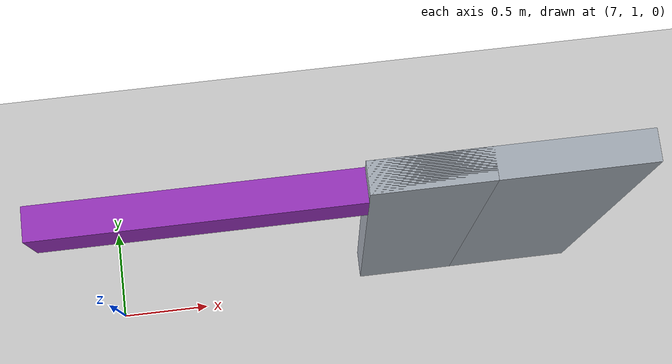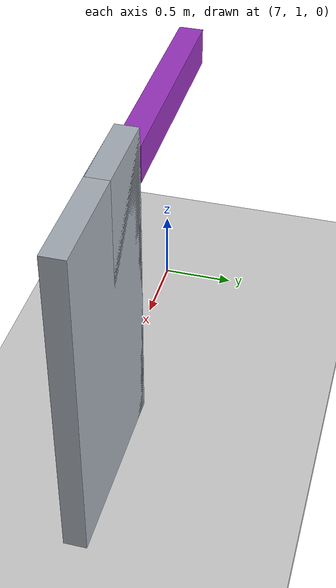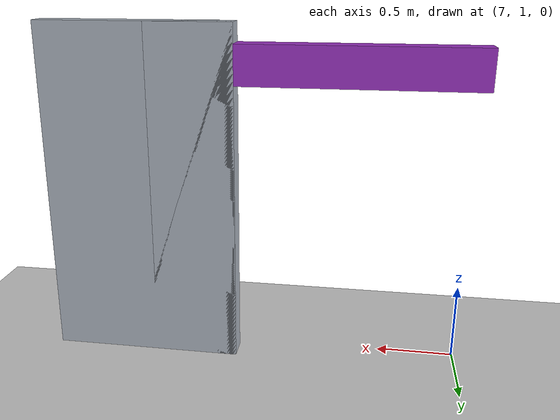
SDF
<sdf version="1.9">
 <world name="default">
  <model name="ground_plane">
   <static>true</static>
   <pose>4.85 0 -0.05 0 0 0</pose>
   <link name="body">
    <collision name="collision"><geometry><box><size>13.7 12 0.1</size></box></geometry></collision>
    <visual name="visual">
     <geometry><box><size>13.7 12 0.1</size></box></geometry>
     <material><ambient>0.8 0.8 0.8 1</ambient><diffuse>0.8 0.8 0.8 1</diffuse></material>
    </visual>
   </link>
  </model>
  <model name="jamb_1_2_1">
   <static>true</static>
   <pose>8.725 1.15 1.1 0 0 0</pose>
   <link name="body">
    <collision name="collision"><geometry><box><size>0.55 0.15 2.2</size></box></geometry></collision>
    <visual name="visual">
     <geometry><box><size>0.55 0.15 2.2</size></box></geometry>
     <material><ambient>0.65 0.68 0.72 1</ambient><diffuse>0.65 0.68 0.72 1</diffuse></material>
    </visual>
   </link>
  </model>
  <model name="hall_end_1">
   <static>true</static>
   <pose>9.075 1.15 1.1 0 0 0</pose>
   <link name="body">
    <collision name="collision"><geometry><box><size>1.25 0.15 2.2</size></box></geometry></collision>
    <visual name="visual">
     <geometry><box><size>1.25 0.15 2.2</size></box></geometry>
     <material><ambient>0.65 0.68 0.72 1</ambient><diffuse>0.65 0.68 0.72 1</diffuse></material>
    </visual>
   </link>
  </model>
  <model name="r3geo_base_r006_left_2_lintel">
   <static>true</static>
   <pose>7.7 1.15 1.95 0 0 0</pose>
   <link name="body">
    <collision name="collision"><geometry><box><size>1.5 0.16 0.25</size></box></geometry></collision>
    <visual name="visual">
     <geometry><box><size>1.5 0.16 0.25</size></box></geometry>
     <material><ambient>0.6 0.2 0.75 1</ambient><diffuse>0.6 0.2 0.75 1</diffuse></material>
    </visual>
   </link>
  </model>
 </world>
</sdf>
